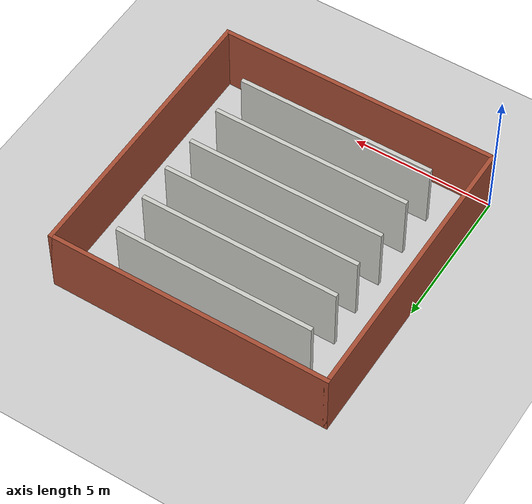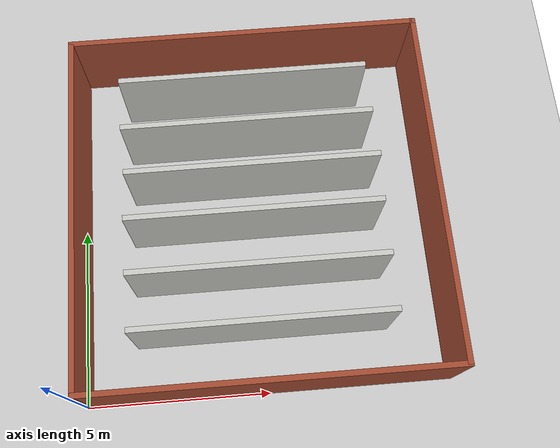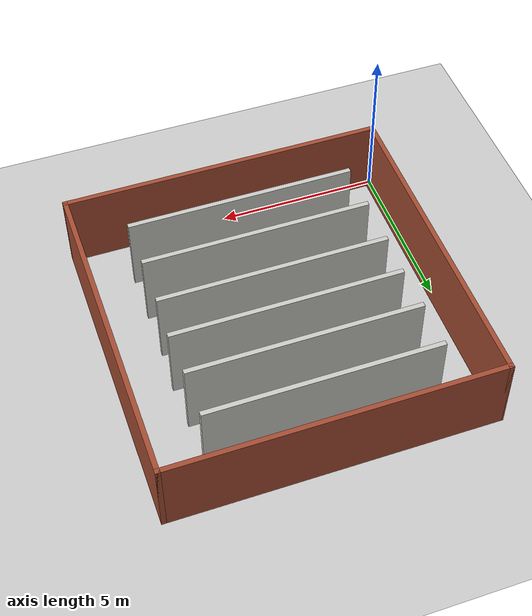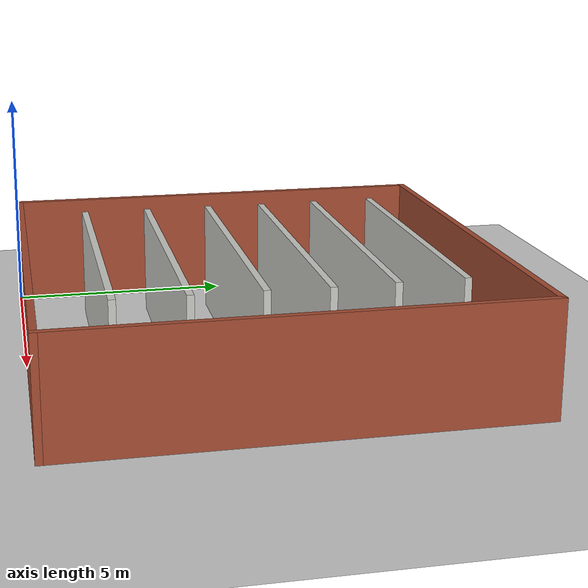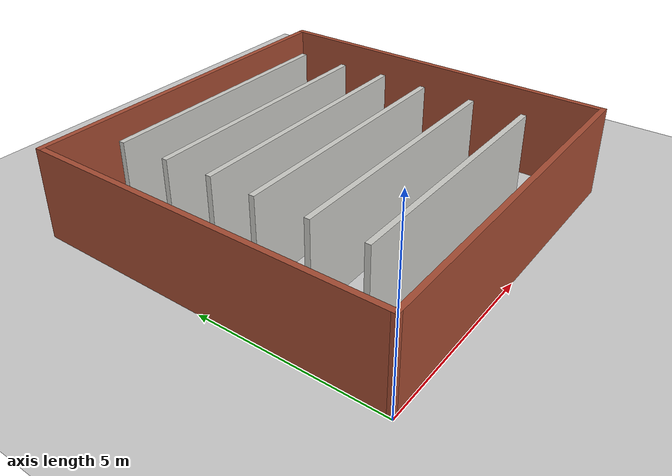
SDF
<sdf version="1.7">
 <world name="default">
  <plugin name="gazebo_occupancy_map" filename="libgazebo_2Dmap_plugin.so">
   <map_resolution>0.15</map_resolution>
   <map_height>0.3</map_height>
   <map_size_x>20</map_size_x>
   <map_size_y>20</map_size_y>
   <init_robot_x>0.975</init_robot_x>
   <init_robot_y>0.975</init_robot_y>
  </plugin>
  <light name="sun" type="directional">
   <pose>0 0 10 0 -0 0</pose>
   <diffuse>0.8 0.8 0.8 1</diffuse>
   <specular>0.2 0.2 0.2 1</specular>
   <attenuation>
    <range>1000</range>
    <constant>0.9</constant>
    <linear>0.01</linear>
    <quadratic>0.001</quadratic>
   </attenuation>
   <direction>-0.5 0.1 -0.9</direction>
   <spot><inner_angle>0</inner_angle><outer_angle>0</outer_angle><falloff>0</falloff></spot>
  </light>
  <model name="ground_plane">
   <static>1</static>
   <link name="link">
    <collision name="collision">
     <geometry><plane><normal>0 0 1</normal><size>100 100</size></plane></geometry>
     <surface>
      <contact><collide_bitmask>65535</collide_bitmask></contact>
      <friction><ode><mu>100</mu><mu2>50</mu2></ode></friction>
     </surface>
    </collision>
    <visual name="visual">
     <cast_shadows>0</cast_shadows>
     <geometry><plane><normal>0 0 1</normal><size>100 100</size></plane></geometry>
     <material>
      <script><uri>file://media/materials/scripts/gazebo.material</uri><name>Gazebo/Grey</name></script>
     </material>
    </visual>
   </link>
  </model>
  <gravity>0 0 -9.8</gravity>
  <magnetic_field>6e-06 2.3e-05 -4.2e-05</magnetic_field>
  <atmosphere type="adiabatic"/>
  <physics type="ode">
   <max_step_size>0.001</max_step_size>
   <real_time_factor>1</real_time_factor>
   <real_time_update_rate>1000</real_time_update_rate>
  </physics>
  <scene><ambient>0.4 0.4 0.4 1</ambient><background>0.7 0.7 0.7 1</background><shadows>1</shadows></scene>
  <spherical_coordinates>
   <surface_model>EARTH_WGS84</surface_model>
   <latitude_deg>0</latitude_deg>
   <longitude_deg>0</longitude_deg>
   <elevation>0</elevation>
   <heading_deg>0</heading_deg>
  </spherical_coordinates>
  <model name="simple_room">
   <pose>5 5 0 0 -0 0</pose>
   <link name="Wall_11">
    <collision name="Wall_11_Collision">
     <geometry><box><size>7 0.15 2.5</size></box></geometry>
     <pose>0 0 1.25 0 -0 0</pose>
    </collision>
    <visual name="Wall_11_Visual">
     <pose>0 0 1.25 0 -0 0</pose>
     <geometry><box><size>7 0.15 2.5</size></box></geometry>
     <material>
      <script><uri>file://media/materials/scripts/gazebo.material</uri><name>Gazebo/CeilingTiled</name></script>
      <ambient>1 1 1 1</ambient>
     </material>
     <meta><layer>0</layer></meta>
    </visual>
    <pose>-0.088398 2.19332 0 0 -0 0</pose>
   </link>
   <link name="Wall_13">
    <collision name="Wall_13_Collision">
     <geometry><box><size>7 0.15 2.5</size></box></geometry>
     <pose>0 0 1.25 0 -0 0</pose>
    </collision>
    <visual name="Wall_13_Visual">
     <pose>0 0 1.25 0 -0 0</pose>
     <geometry><box><size>7 0.15 2.5</size></box></geometry>
     <material>
      <script><uri>file://media/materials/scripts/gazebo.material</uri><name>Gazebo/CeilingTiled</name></script>
      <ambient>1 1 1 1</ambient>
     </material>
     <meta><layer>0</layer></meta>
    </visual>
    <pose>-0.035928 0.864073 0 0 -0 0</pose>
   </link>
   <link name="Wall_19">
    <collision name="Wall_19_Collision">
     <geometry><box><size>7 0.15 2.5</size></box></geometry>
     <pose>0 0 1.25 0 -0 0</pose>
    </collision>
    <visual name="Wall_19_Visual">
     <pose>0 0 1.25 0 -0 0</pose>
     <geometry><box><size>7 0.15 2.5</size></box></geometry>
     <material>
      <script><uri>file://media/materials/scripts/gazebo.material</uri><name>Gazebo/CeilingTiled</name></script>
      <ambient>1 1 1 1</ambient>
     </material>
     <meta><layer>0</layer></meta>
    </visual>
    <pose>-0.088398 -0.447681 0 0 -0 0</pose>
   </link>
   <link name="Wall_21">
    <collision name="Wall_21_Collision">
     <geometry><box><size>7 0.15 2.5</size></box></geometry>
     <pose>0 0 1.25 0 -0 0</pose>
    </collision>
    <visual name="Wall_21_Visual">
     <pose>0 0 1.25 0 -0 0</pose>
     <geometry><box><size>7 0.15 2.5</size></box></geometry>
     <material>
      <script><uri>file://media/materials/scripts/gazebo.material</uri><name>Gazebo/CeilingTiled</name></script>
      <ambient>1 1 1 1</ambient>
     </material>
     <meta><layer>0</layer></meta>
    </visual>
    <pose>-0.088398 -1.93434 0 0 -0 0</pose>
   </link>
   <link name="Wall_23">
    <collision name="Wall_23_Collision">
     <geometry><box><size>7 0.15 2.5</size></box></geometry>
     <pose>0 0 1.25 0 -0 0</pose>
    </collision>
    <visual name="Wall_23_Visual">
     <pose>0 0 1.25 0 -0 0</pose>
     <geometry><box><size>7 0.15 2.5</size></box></geometry>
     <material>
      <script><uri>file://media/materials/scripts/gazebo.material</uri><name>Gazebo/CeilingTiled</name></script>
      <ambient>1 1 1 1</ambient>
     </material>
     <meta><layer>0</layer></meta>
    </visual>
    <pose>-0.088398 -3.42099 0 0 -0 0</pose>
   </link>
   <link name="Wall_3">
    <collision name="Wall_3_Collision">
     <geometry><box><size>10 0.15 2.5</size></box></geometry>
     <pose>0 0 1.25 0 -0 0</pose>
    </collision>
    <visual name="Wall_3_Visual">
     <pose>0 0 1.25 0 -0 0</pose>
     <geometry><box><size>10 0.15 2.5</size></box></geometry>
     <material>
      <script><uri>file://media/materials/scripts/gazebo.material</uri><name>Gazebo/Bricks</name></script>
      <ambient>1 1 1 1</ambient>
     </material>
     <meta><layer>0</layer></meta>
    </visual>
    <pose>0 4.925 0 0 -0 0</pose>
   </link>
   <link name="Wall_4">
    <collision name="Wall_4_Collision">
     <geometry><box><size>10 0.15 2.5</size></box></geometry>
     <pose>0 0 1.25 0 -0 0</pose>
    </collision>
    <visual name="Wall_4_Visual">
     <pose>0 0 1.25 0 -0 0</pose>
     <geometry><box><size>10 0.15 2.5</size></box></geometry>
     <material>
      <script><uri>file://media/materials/scripts/gazebo.material</uri><name>Gazebo/Bricks</name></script>
      <ambient>1 1 1 1</ambient>
     </material>
     <meta><layer>0</layer></meta>
    </visual>
    <pose>4.925 0 0 0 -0 -1.5708</pose>
   </link>
   <link name="Wall_5">
    <collision name="Wall_5_Collision">
     <geometry><box><size>10 0.15 2.5</size></box></geometry>
     <pose>0 0 1.25 0 -0 0</pose>
    </collision>
    <visual name="Wall_5_Visual">
     <pose>0 0 1.25 0 -0 0</pose>
     <geometry><box><size>10 0.15 2.5</size></box></geometry>
     <material>
      <script><uri>file://media/materials/scripts/gazebo.material</uri><name>Gazebo/Bricks</name></script>
      <ambient>1 1 1 1</ambient>
     </material>
     <meta><layer>0</layer></meta>
    </visual>
    <pose>0 -4.925 0 0 -0 3.14159</pose>
   </link>
   <link name="Wall_6">
    <collision name="Wall_6_Collision">
     <geometry><box><size>10 0.15 2.5</size></box></geometry>
     <pose>0 0 1.25 0 -0 0</pose>
    </collision>
    <visual name="Wall_6_Visual">
     <pose>0 0 1.25 0 -0 0</pose>
     <geometry><box><size>10 0.15 2.5</size></box></geometry>
     <material>
      <script><uri>file://media/materials/scripts/gazebo.material</uri><name>Gazebo/Bricks</name></script>
      <ambient>1 1 1 1</ambient>
     </material>
     <meta><layer>0</layer></meta>
    </visual>
    <pose>-4.925 0 0 0 -0 1.5708</pose>
   </link>
   <link name="Wall_8">
    <collision name="Wall_8_Collision">
     <geometry><box><size>7 0.15 2.5</size></box></geometry>
     <pose>0 0 1.25 0 -0 0</pose>
    </collision>
    <visual name="Wall_8_Visual">
     <pose>0 0 1.25 0 -0 0</pose>
     <geometry><box><size>7 0.15 2.5</size></box></geometry>
     <material>
      <script><uri>file://media/materials/scripts/gazebo.material</uri><name>Gazebo/CeilingTiled</name></script>
      <ambient>1 1 1 1</ambient>
     </material>
     <meta><layer>0</layer></meta>
    </visual>
    <pose>-0.106335 3.63023 0 0 -0 0</pose>
   </link>
   <static>1</static>
  </model>
 </world>
</sdf>
